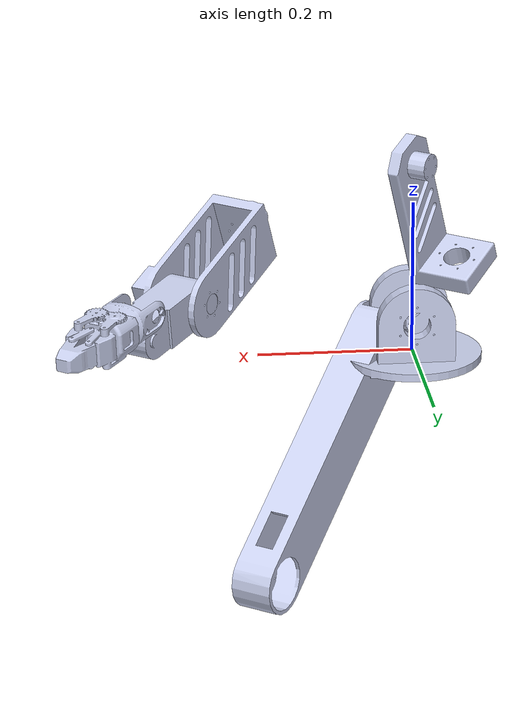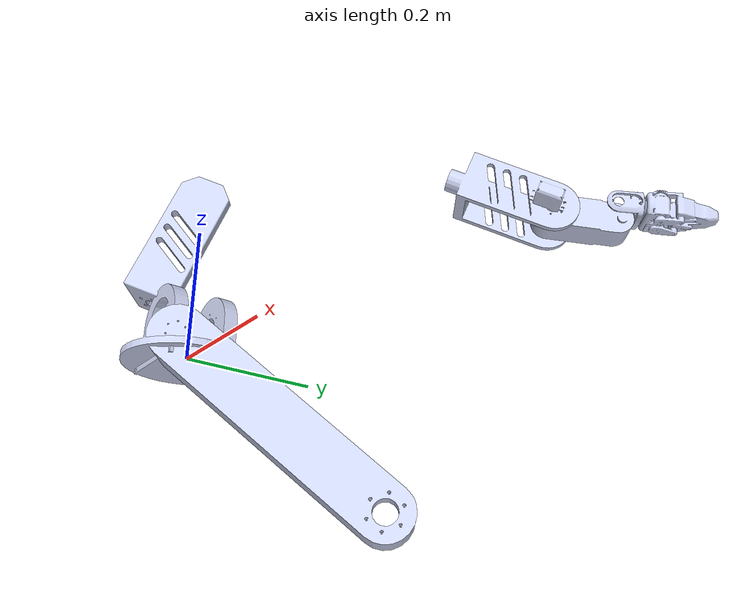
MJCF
<mujoco model="arm">
  <compiler angle="radian"/>

  <asset>
    <mesh name="base_link" content_type="model/stl" file="base_link.STL"/>
    <mesh name="arm_link1" content_type="model/stl" file="arm_link1.STL"/>
    <mesh name="arm_link2" content_type="model/stl" file="arm_link2.STL"/>
    <mesh name="wrist_link1" content_type="model/stl" file="wrist_link1.STL"/>
    <mesh name="wrist_link2" content_type="model/stl" file="wrist_link2.STL"/>
    <mesh name="wrist_link3" content_type="model/stl" file="wrist_link3.STL"/>
  </asset>

  <worldbody>
    <geom type="mesh" rgba="0.79216 0.81961 0.93333 1" mesh="base_link"/>
    <body name="arm_link1" pos="0 0 0.011635" quat="0.702775 0.48693 0.512738 0.0781371">
      <inertial pos="-0.036656 0.24877 0.0017121" quat="0.503599 0.498181 -0.494722 0.503443" mass="0.69727" diaginertia="0.010952 0.0107561 0.000718225"/>
      <joint name="joint0" pos="0 0 0" axis="0.644589 0 -0.764529" range="-1.57 1.57"/>
      <geom type="mesh" rgba="0.79216 0.81961 0.93333 1" mesh="arm_link1"/>
      <body name="arm_link2" pos="-0.1546 0.18337 0" quat="0.811752 0 0 -0.584002">
        <inertial pos="-0.1803 0.28553 -0.0137" quat="0.442075 0.536052 -0.553438 0.459265" mass="0.44856" diaginertia="0.00180007 0.00175566 0.000374045"/>
        <joint name="joint1" pos="0 0 0" axis="0.92979 0.36809 0" range="-2.36 2.36"/>
        <geom type="mesh" rgba="0.79216 0.81961 0.93333 1" mesh="arm_link2"/>
        <body name="wrist_link1" pos="0.061947 0.024524 0" quat="0.707105 0 0.707108 0">
          <inertial pos="-0.012917 0.39657 -0.2425" quat="0.502285 0.497703 -0.497721 0.502271" mass="0.28916" diaginertia="0.00110567 0.0010542 0.000321195"/>
          <joint name="joint2" pos="0 0 0" axis="0 0.36809 0.92979" range="-3.14 3.14"/>
          <geom type="mesh" rgba="0.79216 0.81961 0.93333 1" mesh="wrist_link1"/>
          <body name="wrist_link2" pos="0 -0.0042228 -0.010667" quat="0.433338 -0.558764 -0.433342 0.558764">
            <inertial pos="0.56466 0.10603 0.0069794" quat="0.500171 0.499829 0.499829 0.500171" mass="0.34435" diaginertia="0.00063583 0.00062808 0.00013834"/>
            <joint name="joint3" pos="0 0 0" axis="0.12512 -0.992142 0" range="-1.57 1.57"/>
            <geom type="mesh" rgba="0.79216 0.81961 0.93333 1" mesh="wrist_link2"/>
            <body name="wrist_link3" pos="0.0032086 -0.025443 0" quat="-0.0156296 0.706934 0.0156271 0.706934">
              <inertial pos="0.0051806 -0.13286 0.69835" quat="0.706531 -0.0264204 -0.0254876 0.706729" mass="0.17519" diaginertia="5.8965e-05 4.87725e-05 3.49224e-05"/>
              <joint name="joint4" pos="0 0 0" axis="0 0.991932 0.12677" range="-2.36 2.36"/>
              <geom type="mesh" rgba="0.79216 0.81961 0.93333 1" mesh="wrist_link3"/>
            </body>
          </body>
        </body>
      </body>
    </body>
  </worldbody>
</mujoco>
